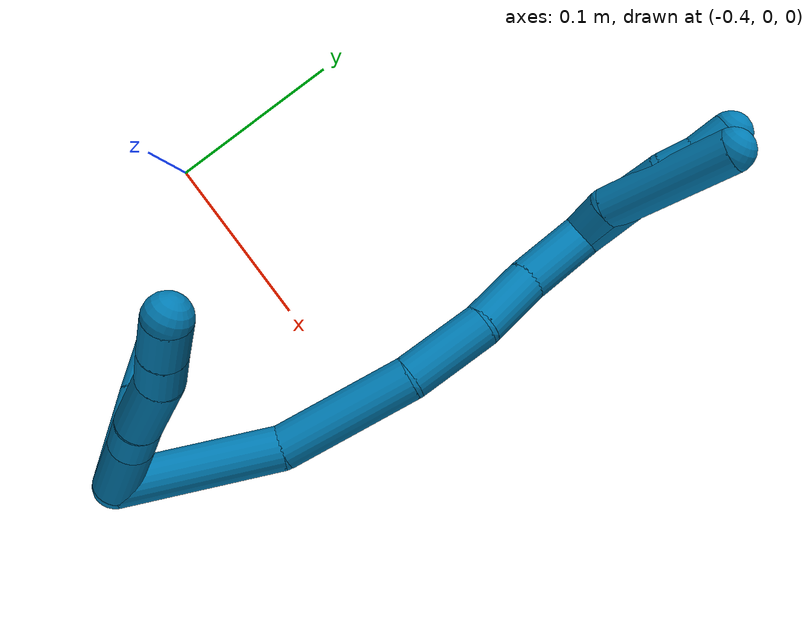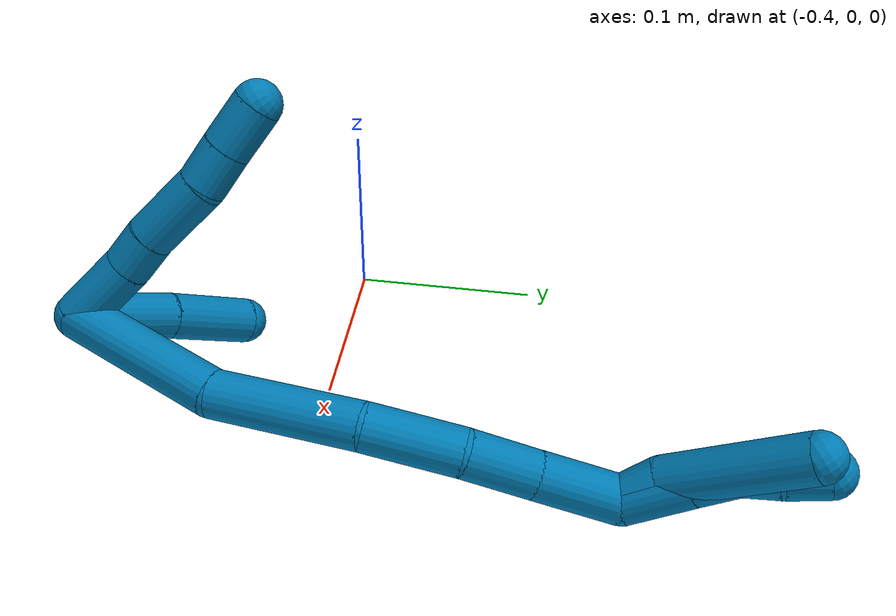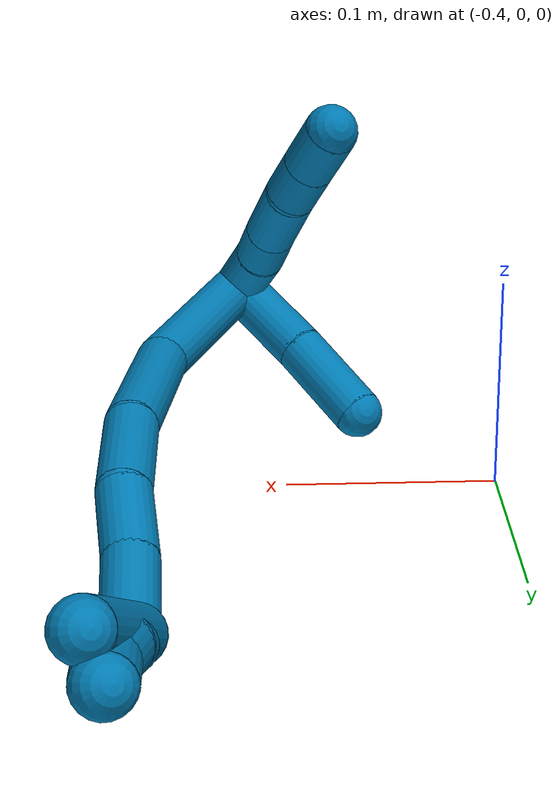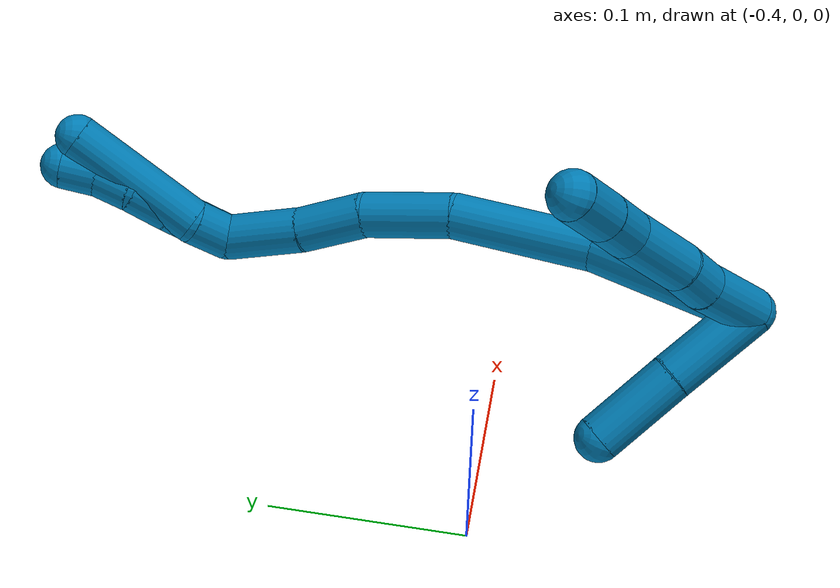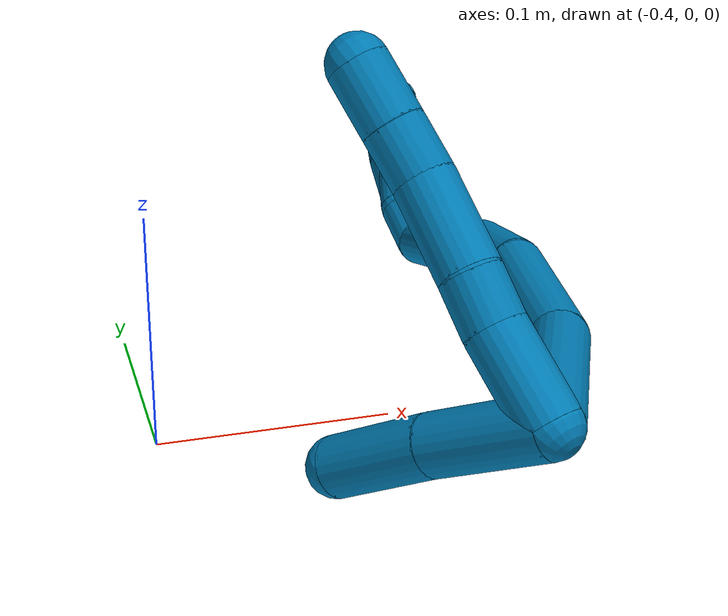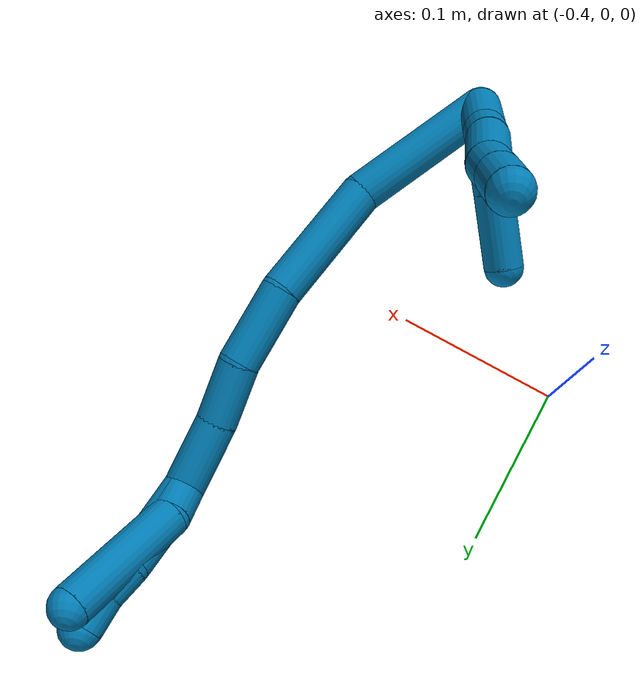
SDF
<sdf version="1.7">
 <world name="default">
  <model name="9">
   <static>0</static>
   <link name="9">
    <collision name="collision-cylinder-e_1_2_8">
     <pose>0.002398 -0.00353 0.019265 0.181215 0.121813 0.011081</pose>
     <geometry><cylinder><radius>0.0125</radius><length>0.039464</length></cylinder></geometry>
     <surface>
      <friction><ode><mu>1.16</mu><mu2>1.16</mu2><slip1>0</slip1><slip2>0</slip2></ode></friction>
      <contact><ode><kp>1e+06</kp><kd>1</kd><max_vel>0</max_vel><min_depth>0.001</min_depth></ode></contact>
     </surface>
    </collision>
    <visual name="visual-cylinder-e_1_2_8">
     <pose>0.002398 -0.00353 0.019265 0.181215 0.121813 0.011081</pose>
     <geometry><cylinder><radius>0.0125</radius><length>0.039464</length></cylinder></geometry>
     <material><ambient>0 0.490196 0.709804 1</ambient></material>
    </visual>
    <collision name="collision-cylinder-e_2_8_9">
     <pose>0.007038 -0.009992 0.048669 0.281547 0.209354 0.029774</pose>
     <geometry><cylinder><radius>0.0125</radius><length>0.02158</length></cylinder></geometry>
     <surface>
      <friction><ode><mu>1.16</mu><mu2>1.16</mu2><slip1>0</slip1><slip2>0</slip2></ode></friction>
      <contact><ode><kp>1e+06</kp><kd>1</kd><max_vel>0</max_vel><min_depth>0.001</min_depth></ode></contact>
     </surface>
    </collision>
    <visual name="visual-cylinder-e_2_8_9">
     <pose>0.007038 -0.009992 0.048669 0.281547 0.209354 0.029774</pose>
     <geometry><cylinder><radius>0.0125</radius><length>0.02158</length></cylinder></geometry>
     <material><ambient>0 0.490196 0.709804 1</ambient></material>
    </visual>
    <collision name="collision-cylinder-e_3_9_10">
     <pose>0.012997 -0.016095 0.077993 0.163762 0.188844 0.015543</pose>
     <geometry><cylinder><radius>0.0125</radius><length>0.039594</length></cylinder></geometry>
     <surface>
      <friction><ode><mu>1.16</mu><mu2>1.16</mu2><slip1>0</slip1><slip2>0</slip2></ode></friction>
      <contact><ode><kp>1e+06</kp><kd>1</kd><max_vel>0</max_vel><min_depth>0.001</min_depth></ode></contact>
     </surface>
    </collision>
    <visual name="visual-cylinder-e_3_9_10">
     <pose>0.012997 -0.016095 0.077993 0.163762 0.188844 0.015543</pose>
     <geometry><cylinder><radius>0.0125</radius><length>0.039594</length></cylinder></geometry>
     <material><ambient>0 0.490196 0.709804 1</ambient></material>
    </visual>
    <collision name="collision-cylinder-e_4_10_11">
     <pose>0.017945 -0.023351 0.107749 0.368851 0.108254 0.020213</pose>
     <geometry><cylinder><radius>0.0125</radius><length>0.022801</length></cylinder></geometry>
     <surface>
      <friction><ode><mu>1.16</mu><mu2>1.16</mu2><slip1>0</slip1><slip2>0</slip2></ode></friction>
      <contact><ode><kp>1e+06</kp><kd>1</kd><max_vel>0</max_vel><min_depth>0.001</min_depth></ode></contact>
     </surface>
    </collision>
    <visual name="visual-cylinder-e_4_10_11">
     <pose>0.017945 -0.023351 0.107749 0.368851 0.108254 0.020213</pose>
     <geometry><cylinder><radius>0.0125</radius><length>0.022801</length></cylinder></geometry>
     <material><ambient>0 0.490196 0.709804 1</ambient></material>
    </visual>
    <collision name="collision-cylinder-e_5_11_6">
     <pose>0.020568 -0.031884 0.130757 0.343347 0.104974 0.018217</pose>
     <geometry><cylinder><radius>0.0125</radius><length>0.026561</length></cylinder></geometry>
     <surface>
      <friction><ode><mu>1.16</mu><mu2>1.16</mu2><slip1>0</slip1><slip2>0</slip2></ode></friction>
      <contact><ode><kp>1e+06</kp><kd>1</kd><max_vel>0</max_vel><min_depth>0.001</min_depth></ode></contact>
     </surface>
    </collision>
    <visual name="visual-cylinder-e_5_11_6">
     <pose>0.020568 -0.031884 0.130757 0.343347 0.104974 0.018217</pose>
     <geometry><cylinder><radius>0.0125</radius><length>0.026561</length></cylinder></geometry>
     <material><ambient>0 0.490196 0.709804 1</ambient></material>
    </visual>
    <collision name="collision-cylinder-e_1_2_12">
     <pose>-0.018255 0.012224 0.014086 -0.714736 -0.774679 0.302333</pose>
     <geometry><cylinder><radius>0.0125</radius><length>0.052196</length></cylinder></geometry>
     <surface>
      <friction><ode><mu>1.16</mu><mu2>1.16</mu2><slip1>0</slip1><slip2>0</slip2></ode></friction>
      <contact><ode><kp>1e+06</kp><kd>1</kd><max_vel>0</max_vel><min_depth>0.001</min_depth></ode></contact>
     </surface>
    </collision>
    <visual name="visual-cylinder-e_1_2_12">
     <pose>-0.018255 0.012224 0.014086 -0.714736 -0.774679 0.302333</pose>
     <geometry><cylinder><radius>0.0125</radius><length>0.052196</length></cylinder></geometry>
     <material><ambient>0 0.490196 0.709804 1</ambient></material>
    </visual>
    <collision name="collision-cylinder-e_2_12_5">
     <pose>-0.053349 0.036596 0.040013 -0.798228 -0.781677 0.344115</pose>
     <geometry><cylinder><radius>0.0125</radius><length>0.047804</length></cylinder></geometry>
     <surface>
      <friction><ode><mu>1.16</mu><mu2>1.16</mu2><slip1>0</slip1><slip2>0</slip2></ode></friction>
      <contact><ode><kp>1e+06</kp><kd>1</kd><max_vel>0</max_vel><min_depth>0.001</min_depth></ode></contact>
     </surface>
    </collision>
    <visual name="visual-cylinder-e_2_12_5">
     <pose>-0.053349 0.036596 0.040013 -0.798228 -0.781677 0.344115</pose>
     <geometry><cylinder><radius>0.0125</radius><length>0.047804</length></cylinder></geometry>
     <material><ambient>0 0.490196 0.709804 1</ambient></material>
    </visual>
    <collision name="collision-cylinder-e_1_2_13">
     <pose>0.015971 0.034712 0.024208 -0.961828 0.360866 -0.189789</pose>
     <geometry><cylinder><radius>0.0125</radius><length>0.090465</length></cylinder></geometry>
     <surface>
      <friction><ode><mu>1.16</mu><mu2>1.16</mu2><slip1>0</slip1><slip2>0</slip2></ode></friction>
      <contact><ode><kp>1e+06</kp><kd>1</kd><max_vel>0</max_vel><min_depth>0.001</min_depth></ode></contact>
     </surface>
    </collision>
    <visual name="visual-cylinder-e_1_2_13">
     <pose>0.015971 0.034712 0.024208 -0.961828 0.360866 -0.189789</pose>
     <geometry><cylinder><radius>0.0125</radius><length>0.090465</length></cylinder></geometry>
     <material><ambient>0 0.490196 0.709804 1</ambient></material>
    </visual>
    <collision name="collision-cylinder-e_2_13_14">
     <pose>0.038489 0.094792 0.077392 -0.719089 0.168387 -0.063423</pose>
     <geometry><cylinder><radius>0.0125</radius><length>0.078129</length></cylinder></geometry>
     <surface>
      <friction><ode><mu>1.16</mu><mu2>1.16</mu2><slip1>0</slip1><slip2>0</slip2></ode></friction>
      <contact><ode><kp>1e+06</kp><kd>1</kd><max_vel>0</max_vel><min_depth>0.001</min_depth></ode></contact>
     </surface>
    </collision>
    <visual name="visual-cylinder-e_2_13_14">
     <pose>0.038489 0.094792 0.077392 -0.719089 0.168387 -0.063423</pose>
     <geometry><cylinder><radius>0.0125</radius><length>0.078129</length></cylinder></geometry>
     <material><ambient>0 0.490196 0.709804 1</ambient></material>
    </visual>
    <collision name="collision-cylinder-e_3_14_15">
     <pose>0.044353 0.138132 0.123326 -0.814459 -0.027608 0.011909</pose>
     <geometry><cylinder><radius>0.0125</radius><length>0.049438</length></cylinder></geometry>
     <surface>
      <friction><ode><mu>1.16</mu><mu2>1.16</mu2><slip1>0</slip1><slip2>0</slip2></ode></friction>
      <contact><ode><kp>1e+06</kp><kd>1</kd><max_vel>0</max_vel><min_depth>0.001</min_depth></ode></contact>
     </surface>
    </collision>
    <visual name="visual-cylinder-e_3_14_15">
     <pose>0.044353 0.138132 0.123326 -0.814459 -0.027608 0.011909</pose>
     <geometry><cylinder><radius>0.0125</radius><length>0.049438</length></cylinder></geometry>
     <material><ambient>0 0.490196 0.709804 1</ambient></material>
    </visual>
    <collision name="collision-cylinder-e_4_15_16">
     <pose>0.039209 0.17064 0.151365 -0.919408 -0.239437 0.11897</pose>
     <geometry><cylinder><radius>0.0125</radius><length>0.03763</length></cylinder></geometry>
     <surface>
      <friction><ode><mu>1.16</mu><mu2>1.16</mu2><slip1>0</slip1><slip2>0</slip2></ode></friction>
      <contact><ode><kp>1e+06</kp><kd>1</kd><max_vel>0</max_vel><min_depth>0.001</min_depth></ode></contact>
     </surface>
    </collision>
    <visual name="visual-cylinder-e_4_15_16">
     <pose>0.039209 0.17064 0.151365 -0.919408 -0.239437 0.11897</pose>
     <geometry><cylinder><radius>0.0125</radius><length>0.03763</length></cylinder></geometry>
     <material><ambient>0 0.490196 0.709804 1</ambient></material>
    </visual>
    <collision name="collision-cylinder-e_5_16_1">
     <pose>0.032022 0.202103 0.176501 -0.877868 -0.123229 0.05791</pose>
     <geometry><cylinder><radius>0.0125</radius><length>0.044338</length></cylinder></geometry>
     <surface>
      <friction><ode><mu>1.16</mu><mu2>1.16</mu2><slip1>0</slip1><slip2>0</slip2></ode></friction>
      <contact><ode><kp>1e+06</kp><kd>1</kd><max_vel>0</max_vel><min_depth>0.001</min_depth></ode></contact>
     </surface>
    </collision>
    <visual name="visual-cylinder-e_5_16_1">
     <pose>0.032022 0.202103 0.176501 -0.877868 -0.123229 0.05791</pose>
     <geometry><cylinder><radius>0.0125</radius><length>0.044338</length></cylinder></geometry>
     <material><ambient>0 0.490196 0.709804 1</ambient></material>
    </visual>
    <collision name="collision-cylinder-e_1_1_17">
     <pose>0.031493 0.219186 0.20179 -0.013879 0.193009 -0.001344</pose>
     <geometry><cylinder><radius>0.0125</radius><length>0.022897</length></cylinder></geometry>
     <surface>
      <friction><ode><mu>1.16</mu><mu2>1.16</mu2><slip1>0</slip1><slip2>0</slip2></ode></friction>
      <contact><ode><kp>1e+06</kp><kd>1</kd><max_vel>0</max_vel><min_depth>0.001</min_depth></ode></contact>
     </surface>
    </collision>
    <visual name="visual-cylinder-e_1_1_17">
     <pose>0.031493 0.219186 0.20179 -0.013879 0.193009 -0.001344</pose>
     <geometry><cylinder><radius>0.0125</radius><length>0.022897</length></cylinder></geometry>
     <material><ambient>0 0.490196 0.709804 1</ambient></material>
    </visual>
    <collision name="collision-cylinder-e_2_17_4">
     <pose>0.051274 0.227073 0.246449 -0.227302 0.473651 -0.055084</pose>
     <geometry><cylinder><radius>0.0125</radius><length>0.077103</length></cylinder></geometry>
     <surface>
      <friction><ode><mu>1.16</mu><mu2>1.16</mu2><slip1>0</slip1><slip2>0</slip2></ode></friction>
      <contact><ode><kp>1e+06</kp><kd>1</kd><max_vel>0</max_vel><min_depth>0.001</min_depth></ode></contact>
     </surface>
    </collision>
    <visual name="visual-cylinder-e_2_17_4">
     <pose>0.051274 0.227073 0.246449 -0.227302 0.473651 -0.055084</pose>
     <geometry><cylinder><radius>0.0125</radius><length>0.077103</length></cylinder></geometry>
     <material><ambient>0 0.490196 0.709804 1</ambient></material>
    </visual>
    <collision name="collision-cylinder-e_1_1_18">
     <pose>0.034065 0.222295 0.207691 -0.188272 0.266812 -0.02534</pose>
     <geometry><cylinder><radius>0.0125</radius><length>0.036168</length></cylinder></geometry>
     <surface>
      <friction><ode><mu>1.16</mu><mu2>1.16</mu2><slip1>0</slip1><slip2>0</slip2></ode></friction>
      <contact><ode><kp>1e+06</kp><kd>1</kd><max_vel>0</max_vel><min_depth>0.001</min_depth></ode></contact>
     </surface>
    </collision>
    <visual name="visual-cylinder-e_1_1_18">
     <pose>0.034065 0.222295 0.207691 -0.188272 0.266812 -0.02534</pose>
     <geometry><cylinder><radius>0.0125</radius><length>0.036168</length></cylinder></geometry>
     <material><ambient>0 0.490196 0.709804 1</ambient></material>
    </visual>
    <collision name="collision-cylinder-e_2_18_19">
     <pose>0.042364 0.227607 0.235657 -0.186891 0.310003 -0.029286</pose>
     <geometry><cylinder><radius>0.0125</radius><length>0.023147</length></cylinder></geometry>
     <surface>
      <friction><ode><mu>1.16</mu><mu2>1.16</mu2><slip1>0</slip1><slip2>0</slip2></ode></friction>
      <contact><ode><kp>1e+06</kp><kd>1</kd><max_vel>0</max_vel><min_depth>0.001</min_depth></ode></contact>
     </surface>
    </collision>
    <visual name="visual-cylinder-e_2_18_19">
     <pose>0.042364 0.227607 0.235657 -0.186891 0.310003 -0.029286</pose>
     <geometry><cylinder><radius>0.0125</radius><length>0.023147</length></cylinder></geometry>
     <material><ambient>0 0.490196 0.709804 1</ambient></material>
    </visual>
    <collision name="collision-cylinder-e_3_19_20">
     <pose>0.049125 0.234338 0.254746 -0.515752 0.327992 -0.087236</pose>
     <geometry><cylinder><radius>0.0125</radius><length>0.020057</length></cylinder></geometry>
     <surface>
      <friction><ode><mu>1.16</mu><mu2>1.16</mu2><slip1>0</slip1><slip2>0</slip2></ode></friction>
      <contact><ode><kp>1e+06</kp><kd>1</kd><max_vel>0</max_vel><min_depth>0.001</min_depth></ode></contact>
     </surface>
    </collision>
    <visual name="visual-cylinder-e_3_19_20">
     <pose>0.049125 0.234338 0.254746 -0.515752 0.327992 -0.087236</pose>
     <geometry><cylinder><radius>0.0125</radius><length>0.020057</length></cylinder></geometry>
     <material><ambient>0 0.490196 0.709804 1</ambient></material>
    </visual>
    <collision name="collision-cylinder-e_4_20_3">
     <pose>0.053596 0.243831 0.272043 -0.489135 0.120529 -0.030114</pose>
     <geometry><cylinder><radius>0.0125</radius><length>0.020628</length></cylinder></geometry>
     <surface>
      <friction><ode><mu>1.16</mu><mu2>1.16</mu2><slip1>0</slip1><slip2>0</slip2></ode></friction>
      <contact><ode><kp>1e+06</kp><kd>1</kd><max_vel>0</max_vel><min_depth>0.001</min_depth></ode></contact>
     </surface>
    </collision>
    <visual name="visual-cylinder-e_4_20_3">
     <pose>0.053596 0.243831 0.272043 -0.489135 0.120529 -0.030114</pose>
     <geometry><cylinder><radius>0.0125</radius><length>0.020628</length></cylinder></geometry>
     <material><ambient>0 0.490196 0.709804 1</ambient></material>
    </visual>
    <collision name="collision-sphere-3">
     <pose>0.054836 0.248642 0.281081 0 -0 0</pose>
     <geometry><sphere><radius>0.0125</radius></sphere></geometry>
     <surface>
      <friction><ode><mu>1.16</mu><mu2>1.16</mu2><slip1>0</slip1><slip2>0</slip2></ode></friction>
      <contact><ode><kp>1e+06</kp><kd>1</kd><max_vel>0</max_vel><min_depth>0.001</min_depth></ode></contact>
     </surface>
    </collision>
    <visual name="visual-sphere-3">
     <pose>0.054836 0.248642 0.281081 0 -0 0</pose>
     <geometry><sphere><radius>0.0125</radius></sphere></geometry>
     <material><ambient>0 0.490196 0.709804 1</ambient></material>
    </visual>
    <collision name="collision-sphere-20">
     <pose>0.052356 0.23902 0.263004 0 -0 0</pose>
     <geometry><sphere><radius>0.0125</radius></sphere></geometry>
     <surface>
      <friction><ode><mu>1.16</mu><mu2>1.16</mu2><slip1>0</slip1><slip2>0</slip2></ode></friction>
      <contact><ode><kp>1e+06</kp><kd>1</kd><max_vel>0</max_vel><min_depth>0.001</min_depth></ode></contact>
     </surface>
    </collision>
    <visual name="visual-sphere-20">
     <pose>0.052356 0.23902 0.263004 0 -0 0</pose>
     <geometry><sphere><radius>0.0125</radius></sphere></geometry>
     <material><ambient>0 0.490196 0.709804 1</ambient></material>
    </visual>
    <collision name="collision-sphere-19">
     <pose>0.045894 0.229655 0.246487 0 -0 0</pose>
     <geometry><sphere><radius>0.0125</radius></sphere></geometry>
     <surface>
      <friction><ode><mu>1.16</mu><mu2>1.16</mu2><slip1>0</slip1><slip2>0</slip2></ode></friction>
      <contact><ode><kp>1e+06</kp><kd>1</kd><max_vel>0</max_vel><min_depth>0.001</min_depth></ode></contact>
     </surface>
    </collision>
    <visual name="visual-sphere-19">
     <pose>0.045894 0.229655 0.246487 0 -0 0</pose>
     <geometry><sphere><radius>0.0125</radius></sphere></geometry>
     <material><ambient>0 0.490196 0.709804 1</ambient></material>
    </visual>
    <collision name="collision-sphere-6">
     <pose>0.02196 -0.03633 0.143194 0 -0 0</pose>
     <geometry><sphere><radius>0.0125</radius></sphere></geometry>
     <surface>
      <friction><ode><mu>1.16</mu><mu2>1.16</mu2><slip1>0</slip1><slip2>0</slip2></ode></friction>
      <contact><ode><kp>1e+06</kp><kd>1</kd><max_vel>0</max_vel><min_depth>0.001</min_depth></ode></contact>
     </surface>
    </collision>
    <visual name="visual-sphere-6">
     <pose>0.02196 -0.03633 0.143194 0 -0 0</pose>
     <geometry><sphere><radius>0.0125</radius></sphere></geometry>
     <material><ambient>0 0.490196 0.709804 1</ambient></material>
    </visual>
    <collision name="collision-sphere-11">
     <pose>0.019177 -0.027438 0.118321 0 -0 0</pose>
     <geometry><sphere><radius>0.0125</radius></sphere></geometry>
     <surface>
      <friction><ode><mu>1.16</mu><mu2>1.16</mu2><slip1>0</slip1><slip2>0</slip2></ode></friction>
      <contact><ode><kp>1e+06</kp><kd>1</kd><max_vel>0</max_vel><min_depth>0.001</min_depth></ode></contact>
     </surface>
    </collision>
    <visual name="visual-sphere-11">
     <pose>0.019177 -0.027438 0.118321 0 -0 0</pose>
     <geometry><sphere><radius>0.0125</radius></sphere></geometry>
     <material><ambient>0 0.490196 0.709804 1</ambient></material>
    </visual>
    <collision name="collision-sphere-10">
     <pose>0.016713 -0.019265 0.097178 0 -0 0</pose>
     <geometry><sphere><radius>0.0125</radius></sphere></geometry>
     <surface>
      <friction><ode><mu>1.16</mu><mu2>1.16</mu2><slip1>0</slip1><slip2>0</slip2></ode></friction>
      <contact><ode><kp>1e+06</kp><kd>1</kd><max_vel>0</max_vel><min_depth>0.001</min_depth></ode></contact>
     </surface>
    </collision>
    <visual name="visual-sphere-10">
     <pose>0.016713 -0.019265 0.097178 0 -0 0</pose>
     <geometry><sphere><radius>0.0125</radius></sphere></geometry>
     <material><ambient>0 0.490196 0.709804 1</ambient></material>
    </visual>
    <collision name="collision-sphere-9">
     <pose>0.00928 -0.012925 0.058808 0 -0 0</pose>
     <geometry><sphere><radius>0.0125</radius></sphere></geometry>
     <surface>
      <friction><ode><mu>1.16</mu><mu2>1.16</mu2><slip1>0</slip1><slip2>0</slip2></ode></friction>
      <contact><ode><kp>1e+06</kp><kd>1</kd><max_vel>0</max_vel><min_depth>0.001</min_depth></ode></contact>
     </surface>
    </collision>
    <visual name="visual-sphere-9">
     <pose>0.00928 -0.012925 0.058808 0 -0 0</pose>
     <geometry><sphere><radius>0.0125</radius></sphere></geometry>
     <material><ambient>0 0.490196 0.709804 1</ambient></material>
    </visual>
    <collision name="collision-sphere-2">
     <geometry><sphere><radius>0.0125</radius></sphere></geometry>
     <surface>
      <friction><ode><mu>1.16</mu><mu2>1.16</mu2><slip1>0</slip1><slip2>0</slip2></ode></friction>
      <contact><ode><kp>1e+06</kp><kd>1</kd><max_vel>0</max_vel><min_depth>0.001</min_depth></ode></contact>
     </surface>
    </collision>
    <visual name="visual-sphere-2">
     <geometry><sphere><radius>0.0125</radius></sphere></geometry>
     <material><ambient>0 0.490196 0.709804 1</ambient></material>
    </visual>
    <collision name="collision-sphere-8">
     <pose>0.004795 -0.00706 0.03853 0 -0 0</pose>
     <geometry><sphere><radius>0.0125</radius></sphere></geometry>
     <surface>
      <friction><ode><mu>1.16</mu><mu2>1.16</mu2><slip1>0</slip1><slip2>0</slip2></ode></friction>
      <contact><ode><kp>1e+06</kp><kd>1</kd><max_vel>0</max_vel><min_depth>0.001</min_depth></ode></contact>
     </surface>
    </collision>
    <visual name="visual-sphere-8">
     <pose>0.004795 -0.00706 0.03853 0 -0 0</pose>
     <geometry><sphere><radius>0.0125</radius></sphere></geometry>
     <material><ambient>0 0.490196 0.709804 1</ambient></material>
    </visual>
    <collision name="collision-sphere-12">
     <pose>-0.03651 0.024448 0.028173 0 -0 0</pose>
     <geometry><sphere><radius>0.0125</radius></sphere></geometry>
     <surface>
      <friction><ode><mu>1.16</mu><mu2>1.16</mu2><slip1>0</slip1><slip2>0</slip2></ode></friction>
      <contact><ode><kp>1e+06</kp><kd>1</kd><max_vel>0</max_vel><min_depth>0.001</min_depth></ode></contact>
     </surface>
    </collision>
    <visual name="visual-sphere-12">
     <pose>-0.03651 0.024448 0.028173 0 -0 0</pose>
     <geometry><sphere><radius>0.0125</radius></sphere></geometry>
     <material><ambient>0 0.490196 0.709804 1</ambient></material>
    </visual>
    <collision name="collision-sphere-5">
     <pose>-0.070187 0.048745 0.051854 0 -0 0</pose>
     <geometry><sphere><radius>0.0125</radius></sphere></geometry>
     <surface>
      <friction><ode><mu>1.16</mu><mu2>1.16</mu2><slip1>0</slip1><slip2>0</slip2></ode></friction>
      <contact><ode><kp>1e+06</kp><kd>1</kd><max_vel>0</max_vel><min_depth>0.001</min_depth></ode></contact>
     </surface>
    </collision>
    <visual name="visual-sphere-5">
     <pose>-0.070187 0.048745 0.051854 0 -0 0</pose>
     <geometry><sphere><radius>0.0125</radius></sphere></geometry>
     <material><ambient>0 0.490196 0.709804 1</ambient></material>
    </visual>
    <collision name="collision-sphere-13">
     <pose>0.031942 0.069424 0.048415 0 -0 0</pose>
     <geometry><sphere><radius>0.0125</radius></sphere></geometry>
     <surface>
      <friction><ode><mu>1.16</mu><mu2>1.16</mu2><slip1>0</slip1><slip2>0</slip2></ode></friction>
      <contact><ode><kp>1e+06</kp><kd>1</kd><max_vel>0</max_vel><min_depth>0.001</min_depth></ode></contact>
     </surface>
    </collision>
    <visual name="visual-sphere-13">
     <pose>0.031942 0.069424 0.048415 0 -0 0</pose>
     <geometry><sphere><radius>0.0125</radius></sphere></geometry>
     <material><ambient>0 0.490196 0.709804 1</ambient></material>
    </visual>
    <collision name="collision-sphere-14">
     <pose>0.045036 0.120159 0.106368 0 -0 0</pose>
     <geometry><sphere><radius>0.0125</radius></sphere></geometry>
     <surface>
      <friction><ode><mu>1.16</mu><mu2>1.16</mu2><slip1>0</slip1><slip2>0</slip2></ode></friction>
      <contact><ode><kp>1e+06</kp><kd>1</kd><max_vel>0</max_vel><min_depth>0.001</min_depth></ode></contact>
     </surface>
    </collision>
    <visual name="visual-sphere-14">
     <pose>0.045036 0.120159 0.106368 0 -0 0</pose>
     <geometry><sphere><radius>0.0125</radius></sphere></geometry>
     <material><ambient>0 0.490196 0.709804 1</ambient></material>
    </visual>
    <collision name="collision-sphere-15">
     <pose>0.043671 0.156105 0.140283 0 -0 0</pose>
     <geometry><sphere><radius>0.0125</radius></sphere></geometry>
     <surface>
      <friction><ode><mu>1.16</mu><mu2>1.16</mu2><slip1>0</slip1><slip2>0</slip2></ode></friction>
      <contact><ode><kp>1e+06</kp><kd>1</kd><max_vel>0</max_vel><min_depth>0.001</min_depth></ode></contact>
     </surface>
    </collision>
    <visual name="visual-sphere-15">
     <pose>0.043671 0.156105 0.140283 0 -0 0</pose>
     <geometry><sphere><radius>0.0125</radius></sphere></geometry>
     <material><ambient>0 0.490196 0.709804 1</ambient></material>
    </visual>
    <collision name="collision-sphere-16">
     <pose>0.034747 0.185176 0.162446 0 -0 0</pose>
     <geometry><sphere><radius>0.0125</radius></sphere></geometry>
     <surface>
      <friction><ode><mu>1.16</mu><mu2>1.16</mu2><slip1>0</slip1><slip2>0</slip2></ode></friction>
      <contact><ode><kp>1e+06</kp><kd>1</kd><max_vel>0</max_vel><min_depth>0.001</min_depth></ode></contact>
     </surface>
    </collision>
    <visual name="visual-sphere-16">
     <pose>0.034747 0.185176 0.162446 0 -0 0</pose>
     <geometry><sphere><radius>0.0125</radius></sphere></geometry>
     <material><ambient>0 0.490196 0.709804 1</ambient></material>
    </visual>
    <collision name="collision-sphere-1">
     <pose>0.029297 0.21903 0.190555 0 -0 0</pose>
     <geometry><sphere><radius>0.0125</radius></sphere></geometry>
     <surface>
      <friction><ode><mu>1.16</mu><mu2>1.16</mu2><slip1>0</slip1><slip2>0</slip2></ode></friction>
      <contact><ode><kp>1e+06</kp><kd>1</kd><max_vel>0</max_vel><min_depth>0.001</min_depth></ode></contact>
     </surface>
    </collision>
    <visual name="visual-sphere-1">
     <pose>0.029297 0.21903 0.190555 0 -0 0</pose>
     <geometry><sphere><radius>0.0125</radius></sphere></geometry>
     <material><ambient>0 0.490196 0.709804 1</ambient></material>
    </visual>
    <collision name="collision-sphere-18">
     <pose>0.038833 0.22556 0.224827 0 -0 0</pose>
     <geometry><sphere><radius>0.0125</radius></sphere></geometry>
     <surface>
      <friction><ode><mu>1.16</mu><mu2>1.16</mu2><slip1>0</slip1><slip2>0</slip2></ode></friction>
      <contact><ode><kp>1e+06</kp><kd>1</kd><max_vel>0</max_vel><min_depth>0.001</min_depth></ode></contact>
     </surface>
    </collision>
    <visual name="visual-sphere-18">
     <pose>0.038833 0.22556 0.224827 0 -0 0</pose>
     <geometry><sphere><radius>0.0125</radius></sphere></geometry>
     <material><ambient>0 0.490196 0.709804 1</ambient></material>
    </visual>
    <collision name="collision-sphere-17">
     <pose>0.033689 0.219342 0.213024 0 -0 0</pose>
     <geometry><sphere><radius>0.0125</radius></sphere></geometry>
     <surface>
      <friction><ode><mu>1.16</mu><mu2>1.16</mu2><slip1>0</slip1><slip2>0</slip2></ode></friction>
      <contact><ode><kp>1e+06</kp><kd>1</kd><max_vel>0</max_vel><min_depth>0.001</min_depth></ode></contact>
     </surface>
    </collision>
    <visual name="visual-sphere-17">
     <pose>0.033689 0.219342 0.213024 0 -0 0</pose>
     <geometry><sphere><radius>0.0125</radius></sphere></geometry>
     <material><ambient>0 0.490196 0.709804 1</ambient></material>
    </visual>
    <collision name="collision-sphere-4">
     <pose>0.068859 0.234804 0.279874 0 -0 0</pose>
     <geometry><sphere><radius>0.0125</radius></sphere></geometry>
     <surface>
      <friction><ode><mu>1.16</mu><mu2>1.16</mu2><slip1>0</slip1><slip2>0</slip2></ode></friction>
      <contact><ode><kp>1e+06</kp><kd>1</kd><max_vel>0</max_vel><min_depth>0.001</min_depth></ode></contact>
     </surface>
    </collision>
    <visual name="visual-sphere-4">
     <pose>0.068859 0.234804 0.279874 0 -0 0</pose>
     <geometry><sphere><radius>0.0125</radius></sphere></geometry>
     <material><ambient>0 0.490196 0.709804 1</ambient></material>
    </visual>
    <inertial>
     <pose>0.022308 0.104451 0.118188 0 -0 0</pose>
     <mass>0.75</mass>
     <inertia>
      <ixx>0.000207</ixx>
      <ixy>0</ixy>
      <ixz>0</ixz>
      <iyy>0.000195</iyy>
      <iyz>0</iyz>
      <izz>-0.000107</izz>
     </inertia>
    </inertial>
   </link>
   <pose>-0.278626 -0.124879 0.056243 -0.955085 -0.535124 0.054686</pose>
  </model>
 </world>
</sdf>
